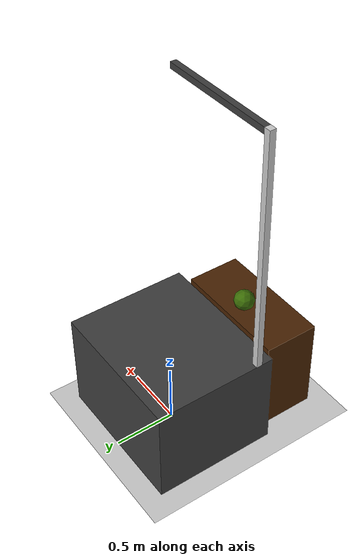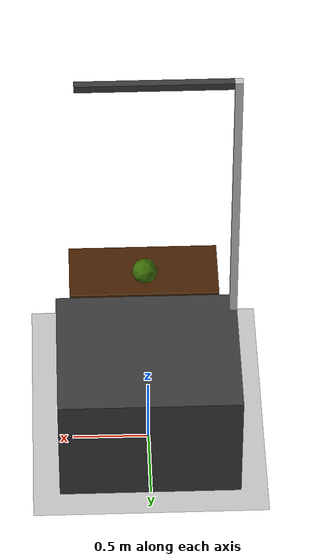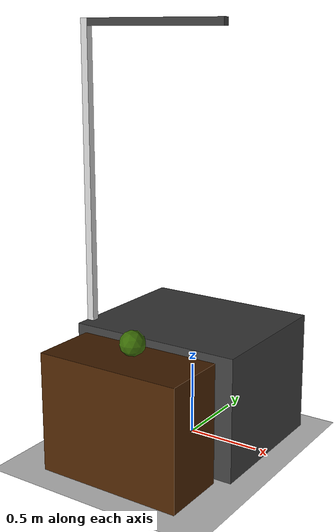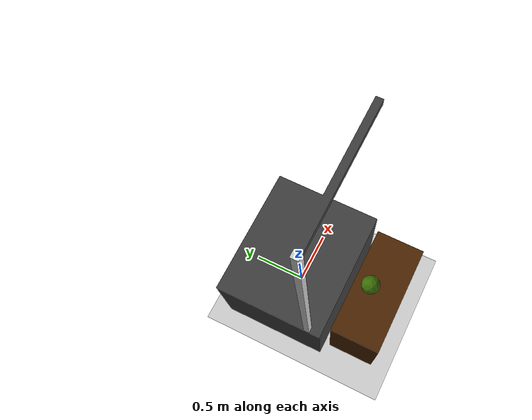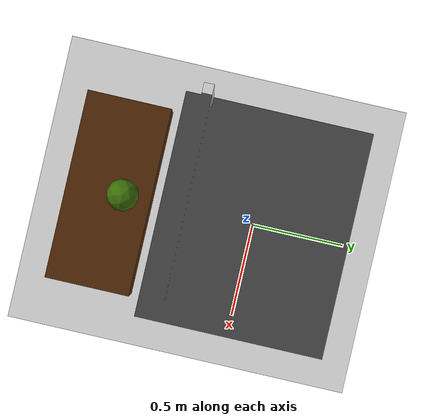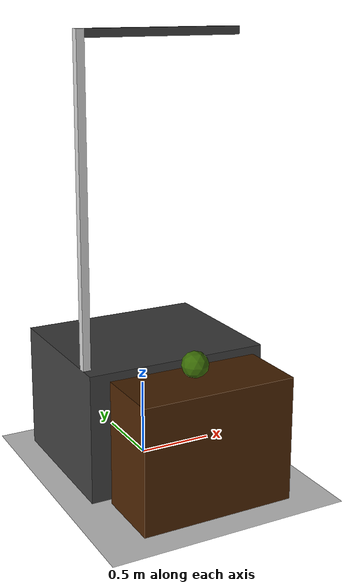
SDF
<?xml version="1.0" ?>
<sdf version="1.4">
  <world name="default">
  <!-- Ground plane and lighting -->
    <include>
      <uri>model://ground_plane</uri>
    </include>
    <include>
      <uri>model://sun</uri>
    </include>

    <model name="table">
      <include>
        <static>true</static>
        <pose>0 0 0 0 0 0</pose>
        <uri>model://table</uri>
      </include>
    </model>

    <model name="vege">
      <include>
        <static>false</static>
        <pose>0 -0.7 0.8 0 0 0</pose>
        <uri>model://vege</uri>
      </include>
    </model>

  </world>
</sdf>

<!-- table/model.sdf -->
<sdf version="1.5">
  <model name="table">
    <link name="link">
    <collision name="collision">
        <geometry>
          <mesh>
            <uri>model://table/meshes/table.dae</uri>
          </mesh>
        </geometry>
      </collision>
      <visual name="visual">
        <cast_shadows>false</cast_shadows>
        <geometry>
          <mesh>
            <uri>model://table/meshes/table.dae</uri>
          </mesh>
        </geometry>
      </visual>
    </link>
  </model>
</sdf>

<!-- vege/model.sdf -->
<sdf version="1.5">
  <model name="vege">
    <link name="link">
    <collision name="collision">
        <geometry>
          <mesh>
            <uri>model://vege/meshes/vege.dae</uri>
          </mesh>
        </geometry>
      </collision>
      <visual name="visual">
        <cast_shadows>false</cast_shadows>
        <geometry>
          <mesh>
            <uri>model://vege/meshes/vege.dae</uri>
          </mesh>
        </geometry>
      </visual>
    </link>
  </model>
</sdf>
